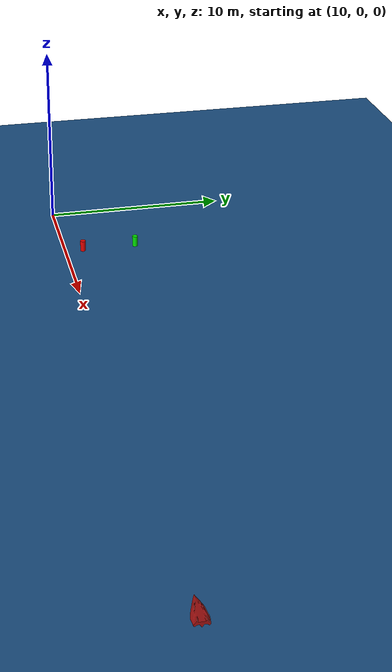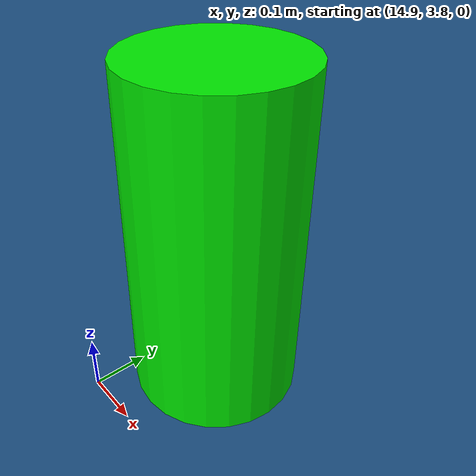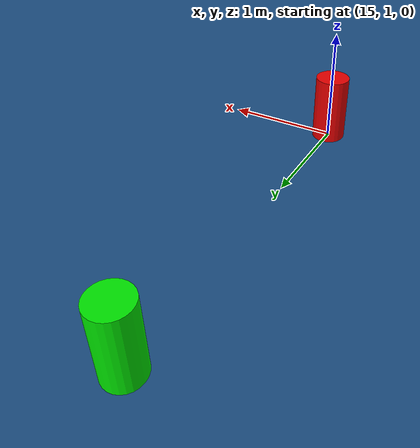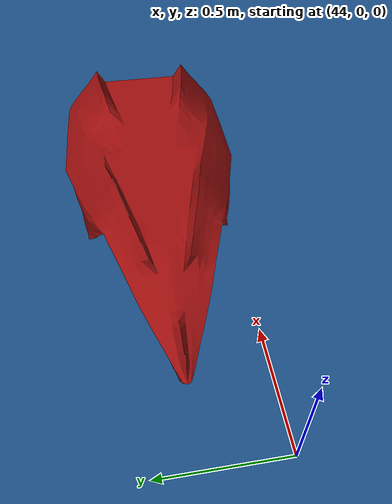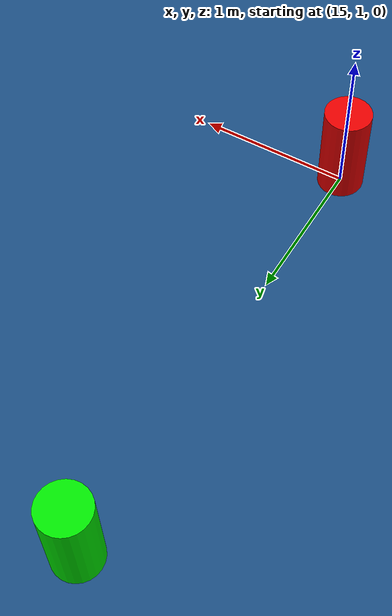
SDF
<?xml version="1.0" ?>
<sdf version="1.10">
    <world name="default">
        <spherical_coordinates>
            <surface_model>EARTH_WGS84</surface_model>
            <world_frame_orientation>ENU</world_frame_orientation>
            <latitude_deg>63.4305</latitude_deg>
            <longitude_deg>10.3951</longitude_deg>
            <elevation>0</elevation>
            <heading_deg>0</heading_deg>
        </spherical_coordinates>
        <physics name="1ms" type="ignored">
            <max_step_size>0.001</max_step_size>
            <real_time_factor>1.0</real_time_factor>
        </physics>
        <plugin
            filename="gz-sim-physics-system"
            name="gz::sim::systems::Physics">
        </plugin>
        <plugin
            filename="gz-sim-user-commands-system"
            name="gz::sim::systems::UserCommands">
        </plugin>
        <plugin
            filename="gz-sim-scene-broadcaster-system"
            name="gz::sim::systems::SceneBroadcaster">
        </plugin>
        <plugin
            filename="gz-sim-sensors-system"
            name="gz::sim::systems::Sensors">
            <render_engine>ogre2</render_engine>
        </plugin>
        <plugin
            filename="gz-sim-imu-system"
            name="gz::sim::systems::Imu">
        </plugin>
        <plugin
            filename="gz-sim-navsat-system"
            name="gz::sim::systems::NavSat">
        </plugin>

        <light type="directional" name="sun">
            <cast_shadows>true</cast_shadows>
            <pose>0 0 10 0 0 0</pose>
            <diffuse>0.8 0.8 0.8 1</diffuse>
            <specular>0.2 0.2 0.2 1</specular>
            <attenuation>
                <range>1000</range>
                <constant>0.9</constant>
                <linear>0.01</linear>
                <quadratic>0.001</quadratic>
            </attenuation>
            <direction>-0.5 0.1 -0.9</direction>
        </light>

        <model name="ground_plane">
            <static>true</static>
            <link name="link">
                <collision name="collision">
                    <geometry>
                        <plane>
                            <normal>0 0 1</normal>
                        </plane>
                    </geometry>
                </collision>
                <visual name="visual">
                    <geometry>
                        <plane>
                            <normal>0 0 1</normal>
                            <size>200 200</size>
                        </plane>
                    </geometry>
                    <material>
                        <ambient>0.1 0.3 0.5 1</ambient>
                        <diffuse>0.1 0.3 0.5 1</diffuse>
                        <specular>0.2 0.3 0.4 1</specular>
                    </material>
                </visual>
            </link>
        </model>

        <model name="gate1_green_buoy">
            <pose>15 4 0.3 0 0 0</pose>
            <static>true</static>
            <link name="link">
                <collision name="collision">
                    <geometry>
                        <cylinder><radius>0.15</radius><length>0.6</length></cylinder>
                    </geometry>
                </collision>
                <visual name="visual">
                    <geometry>
                        <cylinder><radius>0.15</radius><length>0.6</length></cylinder>
                    </geometry>
                    <material>
                        <ambient>0 0.9 0 1</ambient>
                        <diffuse>0 0.9 0 1</diffuse>
                        <specular>0.2 0.2 0.2 1</specular>
                    </material>
                </visual>
            </link>
        </model>

        <model name="gate1_red_buoy">
            <pose>15 1 0.3 0 0 0</pose>
            <static>true</static>
            <link name="link">
                <collision name="collision">
                    <geometry>
                        <cylinder><radius>0.15</radius><length>0.6</length></cylinder>
                    </geometry>
                </collision>
                <visual name="visual">
                    <geometry>
                        <cylinder><radius>0.15</radius><length>0.6</length></cylinder>
                    </geometry>
                    <material>
                        <ambient>0.9 0 0 1</ambient>
                        <diffuse>0.9 0 0 1</diffuse>
                        <specular>0.2 0.2 0.2 1</specular>
                    </material>
                </visual>
            </link>
        </model>

        <model name="otter">
            <pose>45 0.3 0.1 0 0 3.10</pose>
            <link name="hull">
                <inertial>
                    <mass>15.0</mass>
                    <inertia>
                        <ixx>2.0</ixx><iyy>4.0</iyy><izz>4.0</izz>
                        <ixy>0</ixy><ixz>0</ixz><iyz>0</iyz>
                    </inertia>
                </inertial>
                <visual name="visual">
                    <geometry>
                        <mesh><uri>../meshes/hull_visual.obj</uri></mesh>
                    </geometry>
                    <material>
                        <ambient>0.6 0.05 0.05 1</ambient>
                        <diffuse>0.6 0.05 0.05 1</diffuse>
                    </material>
                </visual>
                <collision name="collision">
                    <geometry>
                        <mesh><uri>../meshes/hull_collision.stl</uri></mesh>
                    </geometry>
                </collision>
            </link>
            <plugin filename="gz-sim-velocity-control-system"
                    name="gz::sim::systems::VelocityControl">
                <cmd_vel_topic>/cmd_vel</cmd_vel_topic>
            </plugin>
        </model>
    </world>
</sdf>
